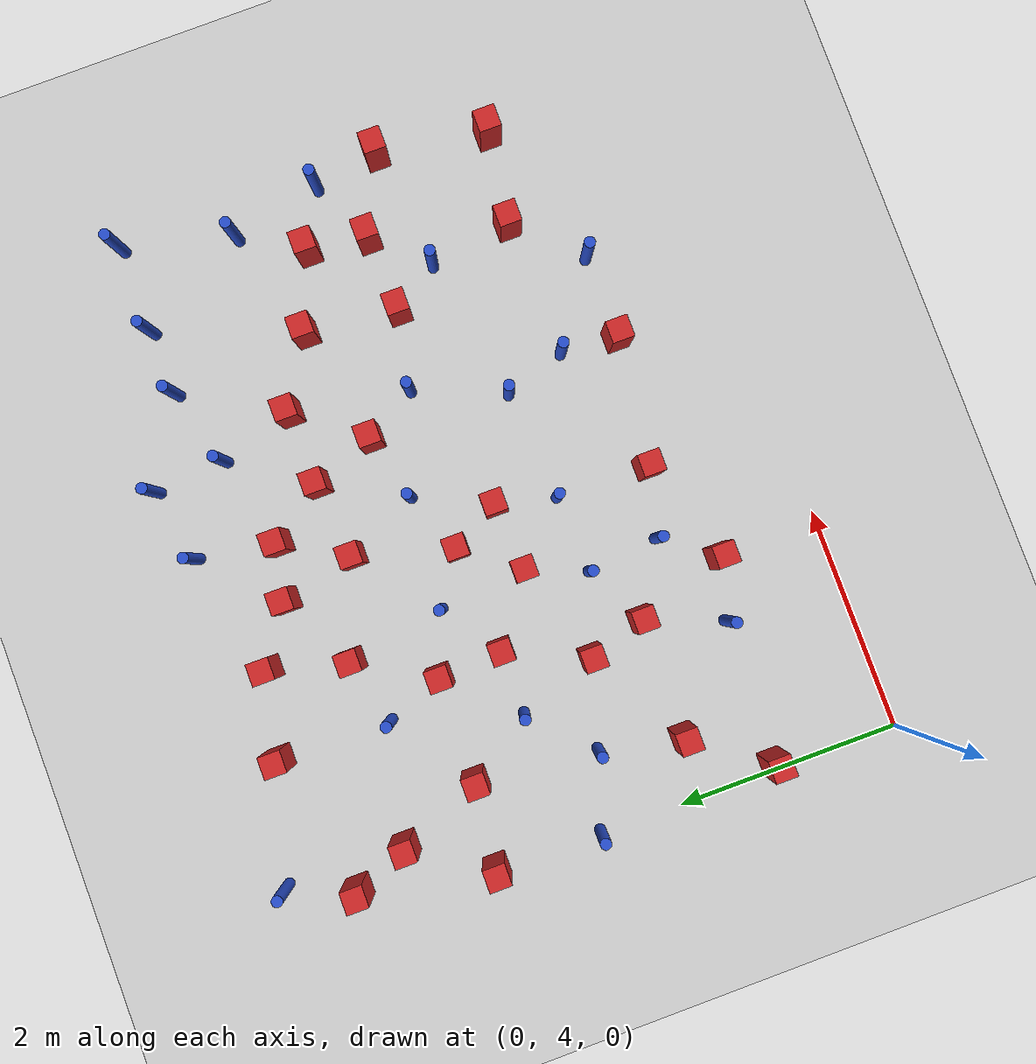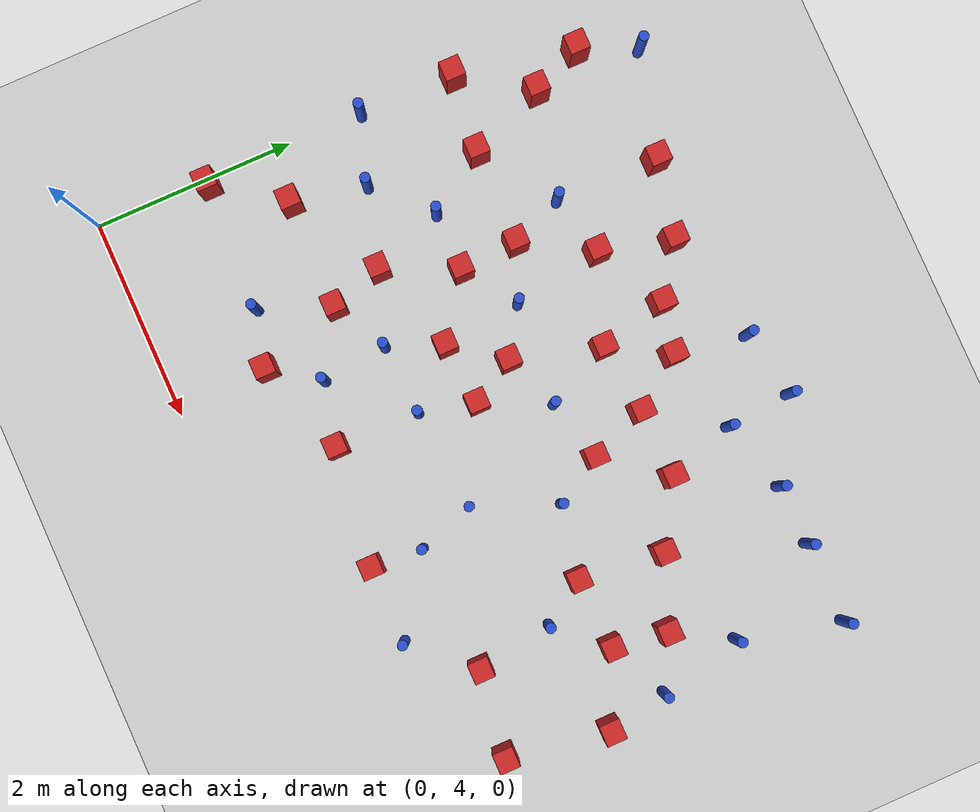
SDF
<sdf version="1.6">
 <world name="default">
  <model name="ground_plane">
   <static>1</static>
   <link name="link">
    <collision name="collision">
     <geometry><plane><normal>0 0 1</normal><size>100 100</size></plane></geometry>
     <surface><friction><ode><mu>100</mu><mu2>50</mu2></ode></friction></surface>
    </collision>
    <visual name="visual">
     <cast_shadows>0</cast_shadows>
     <geometry><plane><normal>0 0 1</normal><size>100 100</size></plane></geometry>
     <material>
      <ambient>1.0 1.0 1.0 1.0</ambient>
      <diffuse>0.8 0.8 0.8 1.0</diffuse>
      <specular>0.01 0.01 0.01 1.000000</specular>
     </material>
    </visual>
   </link>
  </model>
  <model name="square_post_obstacle1">
   <static>true</static>
   <pose>1.93483084903 4.93488205494 1.91545236811e-07 -7.35059704564e-06 1.12565212e-07 2.39332434364e-05</pose>
   <link name="link">
    <pose>0 0 0.25 0 -0 0</pose>
    <inertial>
     <mass>100</mass>
     <inertia>
      <ixx>0.166667</ixx>
      <ixy>0</ixy>
      <ixz>0</ixz>
      <iyy>0.166667</iyy>
      <iyz>0</iyz>
      <izz>0.166667</izz>
     </inertia>
    </inertial>
    <collision name="collision"><geometry><box><size>.2 .2 .5</size></box></geometry></collision>
    <visual name="visual">
     <geometry><box><size>.2 .2 .5</size></box></geometry>
     <material>
      <script><name>Gazebo/Red</name><uri>file://media/materials/scripts/gazebo.material</uri></script>
     </material>
    </visual>
   </link>
  </model>
  <model name="square_post_obstacle2">
   <static>true</static>
   <pose>0.0900470342076 5.1326568709 1.91545236811e-07 -7.35059704564e-06 1.12565212e-07 2.39332434364e-05</pose>
   <link name="link">
    <pose>0 0 0.25 0 -0 0</pose>
    <inertial>
     <mass>100</mass>
     <inertia>
      <ixx>0.166667</ixx>
      <ixy>0</ixy>
      <ixz>0</ixz>
      <iyy>0.166667</iyy>
      <iyz>0</iyz>
      <izz>0.166667</izz>
     </inertia>
    </inertial>
    <collision name="collision"><geometry><box><size>.2 .2 .5</size></box></geometry></collision>
    <visual name="visual">
     <geometry><box><size>.2 .2 .5</size></box></geometry>
     <material>
      <script><name>Gazebo/Red</name><uri>file://media/materials/scripts/gazebo.material</uri></script>
     </material>
    </visual>
   </link>
  </model>
  <model name="square_post_obstacle11">
   <static>true</static>
   <pose>5.7341250689 7.40073843208 1.91545236811e-07 -7.35059704564e-06 1.12565212e-07 2.39332434364e-05</pose>
   <link name="link">
    <pose>0 0 0.25 0 -0 0</pose>
    <inertial>
     <mass>100</mass>
     <inertia>
      <ixx>0.166667</ixx>
      <ixy>0</ixy>
      <ixz>0</ixz>
      <iyy>0.166667</iyy>
      <iyz>0</iyz>
      <izz>0.166667</izz>
     </inertia>
    </inertial>
    <collision name="collision"><geometry><box><size>.2 .2 .5</size></box></geometry></collision>
    <visual name="visual">
     <geometry><box><size>.2 .2 .5</size></box></geometry>
     <material>
      <script><name>Gazebo/Red</name><uri>file://media/materials/scripts/gazebo.material</uri></script>
     </material>
    </visual>
   </link>
  </model>
  <model name="square_post_obstacle12">
   <static>true</static>
   <pose>1.49668909736 6.29393075869 1.91545236811e-07 -7.35059704564e-06 1.12565212e-07 2.39332434364e-05</pose>
   <link name="link">
    <pose>0 0 0.25 0 -0 0</pose>
    <inertial>
     <mass>100</mass>
     <inertia>
      <ixx>0.166667</ixx>
      <ixy>0</ixy>
      <ixz>0</ixz>
      <iyy>0.166667</iyy>
      <iyz>0</iyz>
      <izz>0.166667</izz>
     </inertia>
    </inertial>
    <collision name="collision"><geometry><box><size>.2 .2 .5</size></box></geometry></collision>
    <visual name="visual">
     <geometry><box><size>.2 .2 .5</size></box></geometry>
     <material>
      <script><name>Gazebo/Red</name><uri>file://media/materials/scripts/gazebo.material</uri></script>
     </material>
    </visual>
   </link>
  </model>
  <model name="pole_obstacle15">
   <static>true</static>
   <pose>2.26561595511 5.39655624424 7.38925637345e-09 -8.47170692798e-08 1.24976765033e-08 -1.74513093019e-07</pose>
   <link name="link">
    <pose>0 0 0.3 0 -0 0</pose>
    <inertial>
     <mass>1</mass>
     <inertia><ixx>0.145833</ixx><ixy>0</ixy><ixz>0</ixz><iyy>0.145833</iyy><iyz>0</iyz><izz>0.125</izz></inertia>
    </inertial>
    <collision name="collision">
     <geometry><cylinder><radius>0.05</radius><length>.6</length></cylinder></geometry>
    </collision>
    <visual name="visual">
     <geometry><cylinder><radius>0.05</radius><length>.6</length></cylinder></geometry>
     <material>
      <script><name>Gazebo/Blue</name><uri>file://media/materials/scripts/gazebo.material</uri></script>
     </material>
    </visual>
   </link>
  </model>
  <model name="pole_obstacle17">
   <static>true</static>
   <pose>1.57913167435 8.12434509851 7.38925637345e-09 -8.47170692798e-08 1.24976764881e-08 -1.74513093027e-07</pose>
   <link name="link">
    <pose>0 0 0.3 0 -0 0</pose>
    <inertial>
     <mass>1</mass>
     <inertia><ixx>0.145833</ixx><ixy>0</ixy><ixz>0</ixz><iyy>0.145833</iyy><iyz>0</iyz><izz>0.125</izz></inertia>
    </inertial>
    <collision name="collision">
     <geometry><cylinder><radius>0.05</radius><length>.6</length></cylinder></geometry>
    </collision>
    <visual name="visual">
     <geometry><cylinder><radius>0.05</radius><length>.6</length></cylinder></geometry>
     <material>
      <script><name>Gazebo/Blue</name><uri>file://media/materials/scripts/gazebo.material</uri></script>
     </material>
    </visual>
   </link>
  </model>
  <model name="square_post_obstacle24">
   <static>true</static>
   <pose>1.7915526482 7.59212266439 1.91545236811e-07 -7.35059704564e-06 1.12565212e-07 2.39332434364e-05</pose>
   <link name="link">
    <pose>0 0 0.25 0 -0 0</pose>
    <inertial>
     <mass>100</mass>
     <inertia>
      <ixx>0.166667</ixx>
      <ixy>0</ixy>
      <ixz>0</ixz>
      <iyy>0.166667</iyy>
      <iyz>0</iyz>
      <izz>0.166667</izz>
     </inertia>
    </inertial>
    <collision name="collision"><geometry><box><size>.2 .2 .5</size></box></geometry></collision>
    <visual name="visual">
     <geometry><box><size>.2 .2 .5</size></box></geometry>
     <material>
      <script><name>Gazebo/Red</name><uri>file://media/materials/scripts/gazebo.material</uri></script>
     </material>
    </visual>
   </link>
  </model>
  <model name="square_post_obstacle26">
   <static>true</static>
   <pose>6.18220737324 5.5353171193 1.91545236811e-07 -7.35059704564e-06 1.12565212e-07 2.39332434364e-05</pose>
   <link name="link">
    <pose>0 0 0.25 0 -0 0</pose>
    <inertial>
     <mass>100</mass>
     <inertia>
      <ixx>0.166667</ixx>
      <ixy>0</ixy>
      <ixz>0</ixz>
      <iyy>0.166667</iyy>
      <iyz>0</iyz>
      <izz>0.166667</izz>
     </inertia>
    </inertial>
    <collision name="collision"><geometry><box><size>.2 .2 .5</size></box></geometry></collision>
    <visual name="visual">
     <geometry><box><size>.2 .2 .5</size></box></geometry>
     <material>
      <script><name>Gazebo/Red</name><uri>file://media/materials/scripts/gazebo.material</uri></script>
     </material>
    </visual>
   </link>
  </model>
  <model name="pole_obstacle18">
   <static>true</static>
   <pose>5.52561991202 8.94455557419 7.38925637345e-09 -8.471706928e-08 1.24976765081e-08 -1.74513093015e-07</pose>
   <link name="link">
    <pose>0 0 0.3 0 -0 0</pose>
    <inertial>
     <mass>1</mass>
     <inertia><ixx>0.145833</ixx><ixy>0</ixy><ixz>0</ixz><iyy>0.145833</iyy><iyz>0</iyz><izz>0.125</izz></inertia>
    </inertial>
    <collision name="collision">
     <geometry><cylinder><radius>0.05</radius><length>.6</length></cylinder></geometry>
    </collision>
    <visual name="visual">
     <geometry><cylinder><radius>0.05</radius><length>.6</length></cylinder></geometry>
     <material>
      <script><name>Gazebo/Blue</name><uri>file://media/materials/scripts/gazebo.material</uri></script>
     </material>
    </visual>
   </link>
  </model>
  <model name="pole_obstacle35">
   <static>true</static>
   <pose>0.552713053954 9.45289014186 7.38925637345e-09 -8.47170692797e-08 1.249767648e-08 -1.74513093032e-07</pose>
   <link name="link">
    <pose>0 0 0.3 0 -0 0</pose>
    <inertial>
     <mass>1</mass>
     <inertia><ixx>0.145833</ixx><ixy>0</ixy><ixz>0</ixz><iyy>0.145833</iyy><iyz>0</iyz><izz>0.125</izz></inertia>
    </inertial>
    <collision name="collision">
     <geometry><cylinder><radius>0.05</radius><length>.6</length></cylinder></geometry>
    </collision>
    <visual name="visual">
     <geometry><cylinder><radius>0.05</radius><length>.6</length></cylinder></geometry>
     <material>
      <script><name>Gazebo/Blue</name><uri>file://media/materials/scripts/gazebo.material</uri></script>
     </material>
    </visual>
   </link>
  </model>
  <model name="square_post_obstacle37">
   <static>true</static>
   <pose>3.74082497017 8.02329801374 1.91545236811e-07 -7.35059704564e-06 1.12565212e-07 2.39332434364e-05</pose>
   <link name="link">
    <pose>0 0 0.25 0 -0 0</pose>
    <inertial>
     <mass>100</mass>
     <inertia>
      <ixx>0.166667</ixx>
      <ixy>0</ixy>
      <ixz>0</ixz>
      <iyy>0.166667</iyy>
      <iyz>0</iyz>
      <izz>0.166667</izz>
     </inertia>
    </inertial>
    <collision name="collision"><geometry><box><size>.2 .2 .5</size></box></geometry></collision>
    <visual name="visual">
     <geometry><box><size>.2 .2 .5</size></box></geometry>
     <material>
      <script><name>Gazebo/Red</name><uri>file://media/materials/scripts/gazebo.material</uri></script>
     </material>
    </visual>
   </link>
  </model>
  <model name="pole_obstacle45">
   <static>true</static>
   <pose>0.048771176218 6.74554463984 7.38925637345e-09 -8.471706928e-08 1.2497676505e-08 -1.74513093019e-07</pose>
   <link name="link">
    <pose>0 0 0.3 0 -0 0</pose>
    <inertial>
     <mass>1</mass>
     <inertia><ixx>0.145833</ixx><ixy>0</ixy><ixz>0</ixz><iyy>0.145833</iyy><iyz>0</iyz><izz>0.125</izz></inertia>
    </inertial>
    <collision name="collision">
     <geometry><cylinder><radius>0.05</radius><length>.6</length></cylinder></geometry>
    </collision>
    <visual name="visual">
     <geometry><cylinder><radius>0.05</radius><length>.6</length></cylinder></geometry>
     <material>
      <script><name>Gazebo/Blue</name><uri>file://media/materials/scripts/gazebo.material</uri></script>
     </material>
    </visual>
   </link>
  </model>
  <model name="pole_obstacle46">
   <static>true</static>
   <pose>4.82752817177 5.09648752353 7.38925637345e-09 -8.47170692796e-08 1.24976764786e-08 -1.74513093032e-07</pose>
   <link name="link">
    <pose>0 0 0.3 0 -0 0</pose>
    <inertial>
     <mass>1</mass>
     <inertia><ixx>0.145833</ixx><ixy>0</ixy><ixz>0</ixz><iyy>0.145833</iyy><iyz>0</iyz><izz>0.125</izz></inertia>
    </inertial>
    <collision name="collision">
     <geometry><cylinder><radius>0.05</radius><length>.6</length></cylinder></geometry>
    </collision>
    <visual name="visual">
     <geometry><cylinder><radius>0.05</radius><length>.6</length></cylinder></geometry>
     <material>
      <script><name>Gazebo/Blue</name><uri>file://media/materials/scripts/gazebo.material</uri></script>
     </material>
    </visual>
   </link>
  </model>
  <model name="pole_obstacle47">
   <static>true</static>
   <pose>4.24195158995 6.97730037552 7.38925637345e-09 -8.47170692796e-08 1.24976764786e-08 -1.74513093032e-07</pose>
   <link name="link">
    <pose>0 0 0.3 0 -0 0</pose>
    <inertial>
     <mass>1</mass>
     <inertia><ixx>0.145833</ixx><ixy>0</ixy><ixz>0</ixz><iyy>0.145833</iyy><iyz>0</iyz><izz>0.125</izz></inertia>
    </inertial>
    <collision name="collision">
     <geometry><cylinder><radius>0.05</radius><length>.6</length></cylinder></geometry>
    </collision>
    <visual name="visual">
     <geometry><cylinder><radius>0.05</radius><length>.6</length></cylinder></geometry>
     <material>
      <script><name>Gazebo/Blue</name><uri>file://media/materials/scripts/gazebo.material</uri></script>
     </material>
    </visual>
   </link>
  </model>
  <model name="square_post_obstacle49">
   <static>true</static>
   <pose>2.8762957895 8.62678756831 1.91545236811e-07 -7.35059704564e-06 1.12565212e-07 2.39332434364e-05</pose>
   <link name="link">
    <pose>0 0 0.25 0 -0 0</pose>
    <inertial>
     <mass>100</mass>
     <inertia>
      <ixx>0.166667</ixx>
      <ixy>0</ixy>
      <ixz>0</ixz>
      <iyy>0.166667</iyy>
      <iyz>0</iyz>
      <izz>0.166667</izz>
     </inertia>
    </inertial>
    <collision name="collision"><geometry><box><size>.2 .2 .5</size></box></geometry></collision>
    <visual name="visual">
     <geometry><box><size>.2 .2 .5</size></box></geometry>
     <material>
      <script><name>Gazebo/Red</name><uri>file://media/materials/scripts/gazebo.material</uri></script>
     </material>
    </visual>
   </link>
  </model>
  <model name="square_post_obstacle50">
   <static>true</static>
   <pose>2.88530057109 5.25202806149 1.91545236811e-07 -7.35059704564e-06 1.12565212e-07 2.39332434364e-05</pose>
   <link name="link">
    <pose>0 0 0.25 0 -0 0</pose>
    <inertial>
     <mass>100</mass>
     <inertia>
      <ixx>0.166667</ixx>
      <ixy>0</ixy>
      <ixz>0</ixz>
      <iyy>0.166667</iyy>
      <iyz>0</iyz>
      <izz>0.166667</izz>
     </inertia>
    </inertial>
    <collision name="collision"><geometry><box><size>.2 .2 .5</size></box></geometry></collision>
    <visual name="visual">
     <geometry><box><size>.2 .2 .5</size></box></geometry>
     <material>
      <script><name>Gazebo/Red</name><uri>file://media/materials/scripts/gazebo.material</uri></script>
     </material>
    </visual>
   </link>
  </model>
  <model name="square_post_obstacle52">
   <static>true</static>
   <pose>5.33941183156 5.65777651796 1.91545236811e-07 -7.35059704564e-06 1.12565212e-07 2.39332434364e-05</pose>
   <link name="link">
    <pose>0 0 0.25 0 -0 0</pose>
    <inertial>
     <mass>100</mass>
     <inertia>
      <ixx>0.166667</ixx>
      <ixy>0</ixy>
      <ixz>0</ixz>
      <iyy>0.166667</iyy>
      <iyz>0</iyz>
      <izz>0.166667</izz>
     </inertia>
    </inertial>
    <collision name="collision"><geometry><box><size>.2 .2 .5</size></box></geometry></collision>
    <visual name="visual">
     <geometry><box><size>.2 .2 .5</size></box></geometry>
     <material>
      <script><name>Gazebo/Red</name><uri>file://media/materials/scripts/gazebo.material</uri></script>
     </material>
    </visual>
   </link>
  </model>
  <model name="square_post_obstacle54">
   <static>true</static>
   <pose>4.94875809297 6.83054546641 1.91545236811e-07 -7.35059704564e-06 1.12565212e-07 2.39332434364e-05</pose>
   <link name="link">
    <pose>0 0 0.25 0 -0 0</pose>
    <inertial>
     <mass>100</mass>
     <inertia>
      <ixx>0.166667</ixx>
      <ixy>0</ixy>
      <ixz>0</ixz>
      <iyy>0.166667</iyy>
      <iyz>0</iyz>
      <izz>0.166667</izz>
     </inertia>
    </inertial>
    <collision name="collision"><geometry><box><size>.2 .2 .5</size></box></geometry></collision>
    <visual name="visual">
     <geometry><box><size>.2 .2 .5</size></box></geometry>
     <material>
      <script><name>Gazebo/Red</name><uri>file://media/materials/scripts/gazebo.material</uri></script>
     </material>
    </visual>
   </link>
  </model>
  <model name="square_post_obstacle56">
   <static>true</static>
   <pose>1.6556246484 5.7717464874 1.91545236811e-07 -7.35059704564e-06 1.12565212e-07 2.39332434364e-05</pose>
   <link name="link">
    <pose>0 0 0.25 0 -0 0</pose>
    <inertial>
     <mass>100</mass>
     <inertia>
      <ixx>0.166667</ixx>
      <ixy>0</ixy>
      <ixz>0</ixz>
      <iyy>0.166667</iyy>
      <iyz>0</iyz>
      <izz>0.166667</izz>
     </inertia>
    </inertial>
    <collision name="collision"><geometry><box><size>.2 .2 .5</size></box></geometry></collision>
    <visual name="visual">
     <geometry><box><size>.2 .2 .5</size></box></geometry>
     <material>
      <script><name>Gazebo/Red</name><uri>file://media/materials/scripts/gazebo.material</uri></script>
     </material>
    </visual>
   </link>
  </model>
  <model name="square_post_obstacle57">
   <static>true</static>
   <pose>1.60607143369 9.14301476024 1.91545236811e-07 -7.35059704564e-06 1.12565212e-07 2.39332434364e-05</pose>
   <link name="link">
    <pose>0 0 0.25 0 -0 0</pose>
    <inertial>
     <mass>100</mass>
     <inertia>
      <ixx>0.166667</ixx>
      <ixy>0</ixy>
      <ixz>0</ixz>
      <iyy>0.166667</iyy>
      <iyz>0</iyz>
      <izz>0.166667</izz>
     </inertia>
    </inertial>
    <collision name="collision"><geometry><box><size>.2 .2 .5</size></box></geometry></collision>
    <visual name="visual">
     <geometry><box><size>.2 .2 .5</size></box></geometry>
     <material>
      <script><name>Gazebo/Red</name><uri>file://media/materials/scripts/gazebo.material</uri></script>
     </material>
    </visual>
   </link>
  </model>
  <model name="pole_obstacle61">
   <static>true</static>
   <pose>3.35120120921 7.29725803421 7.38925637345e-09 -8.47170692798e-08 1.24976765033e-08 -1.74513093019e-07</pose>
   <link name="link">
    <pose>0 0 0.3 0 -0 0</pose>
    <inertial>
     <mass>1</mass>
     <inertia><ixx>0.145833</ixx><ixy>0</ixy><ixz>0</ixz><iyy>0.145833</iyy><iyz>0</iyz><izz>0.125</izz></inertia>
    </inertial>
    <collision name="collision">
     <geometry><cylinder><radius>0.05</radius><length>.6</length></cylinder></geometry>
    </collision>
    <visual name="visual">
     <geometry><cylinder><radius>0.05</radius><length>.6</length></cylinder></geometry>
     <material>
      <script><name>Gazebo/Blue</name><uri>file://media/materials/scripts/gazebo.material</uri></script>
     </material>
    </visual>
   </link>
  </model>
  <model name="pole_obstacle64">
   <static>true</static>
   <pose>5.23588643116 6.40237930272 7.38925637345e-09 -8.47170692796e-08 1.24976764786e-08 -1.74513093032e-07</pose>
   <link name="link">
    <pose>0 0 0.3 0 -0 0</pose>
    <inertial>
     <mass>1</mass>
     <inertia><ixx>0.145833</ixx><ixy>0</ixy><ixz>0</ixz><iyy>0.145833</iyy><iyz>0</iyz><izz>0.125</izz></inertia>
    </inertial>
    <collision name="collision">
     <geometry><cylinder><radius>0.05</radius><length>.6</length></cylinder></geometry>
    </collision>
    <visual name="visual">
     <geometry><cylinder><radius>0.05</radius><length>.6</length></cylinder></geometry>
     <material>
      <script><name>Gazebo/Blue</name><uri>file://media/materials/scripts/gazebo.material</uri></script>
     </material>
    </visual>
   </link>
  </model>
  <model name="square_post_obstacle72">
   <static>true</static>
   <pose>2.7919688193 7.0725195455 1.91545236811e-07 -7.35059704564e-06 1.12565212e-07 2.39332434364e-05</pose>
   <link name="link">
    <pose>0 0 0.25 0 -0 0</pose>
    <inertial>
     <mass>100</mass>
     <inertia>
      <ixx>0.166667</ixx>
      <ixy>0</ixy>
      <ixz>0</ixz>
      <iyy>0.166667</iyy>
      <iyz>0</iyz>
      <izz>0.166667</izz>
     </inertia>
    </inertial>
    <collision name="collision"><geometry><box><size>.2 .2 .5</size></box></geometry></collision>
    <visual name="visual">
     <geometry><box><size>.2 .2 .5</size></box></geometry>
     <material>
      <script><name>Gazebo/Red</name><uri>file://media/materials/scripts/gazebo.material</uri></script>
     </material>
    </visual>
   </link>
  </model>
  <model name="square_post_obstacle76">
   <static>true</static>
   <pose>0.0769509774829 7.69463011985 1.91545236811e-07 -7.35059704564e-06 1.12565212e-07 2.39332434364e-05</pose>
   <link name="link">
    <pose>0 0 0.25 0 -0 0</pose>
    <inertial>
     <mass>100</mass>
     <inertia>
      <ixx>0.166667</ixx>
      <ixy>0</ixy>
      <ixz>0</ixz>
      <iyy>0.166667</iyy>
      <iyz>0</iyz>
      <izz>0.166667</izz>
     </inertia>
    </inertial>
    <collision name="collision"><geometry><box><size>.2 .2 .5</size></box></geometry></collision>
    <visual name="visual">
     <geometry><box><size>.2 .2 .5</size></box></geometry>
     <material>
      <script><name>Gazebo/Red</name><uri>file://media/materials/scripts/gazebo.material</uri></script>
     </material>
    </visual>
   </link>
  </model>
  <model name="square_post_obstacle78">
   <static>true</static>
   <pose>2.18633530648 8.26488761641 1.91545236811e-07 -7.35059704564e-06 1.12565212e-07 2.39332434364e-05</pose>
   <link name="link">
    <pose>0 0 0.25 0 -0 0</pose>
    <inertial>
     <mass>100</mass>
     <inertia>
      <ixx>0.166667</ixx>
      <ixy>0</ixy>
      <ixz>0</ixz>
      <iyy>0.166667</iyy>
      <iyz>0</iyz>
      <izz>0.166667</izz>
     </inertia>
    </inertial>
    <collision name="collision"><geometry><box><size>.2 .2 .5</size></box></geometry></collision>
    <visual name="visual">
     <geometry><box><size>.2 .2 .5</size></box></geometry>
     <material>
      <script><name>Gazebo/Red</name><uri>file://media/materials/scripts/gazebo.material</uri></script>
     </material>
    </visual>
   </link>
  </model>
  <model name="pole_obstacle86">
   <static>true</static>
   <pose>1.3770401201 5.07652156089 7.38925637345e-09 -8.47170692799e-08 1.24976765033e-08 -1.74513093018e-07</pose>
   <link name="link">
    <pose>0 0 0.3 0 -0 0</pose>
    <inertial>
     <mass>1</mass>
     <inertia><ixx>0.145833</ixx><ixy>0</ixy><ixz>0</ixz><iyy>0.145833</iyy><iyz>0</iyz><izz>0.125</izz></inertia>
    </inertial>
    <collision name="collision">
     <geometry><cylinder><radius>0.05</radius><length>.6</length></cylinder></geometry>
    </collision>
    <visual name="visual">
     <geometry><cylinder><radius>0.05</radius><length>.6</length></cylinder></geometry>
     <material>
      <script><name>Gazebo/Blue</name><uri>file://media/materials/scripts/gazebo.material</uri></script>
     </material>
    </visual>
   </link>
  </model>
  <model name="pole_obstacle91">
   <static>true</static>
   <pose>1.23452874094 7.01668085963 7.38925637345e-09 -8.47170692799e-08 1.24976765033e-08 -1.74513093018e-07</pose>
   <link name="link">
    <pose>0 0 0.3 0 -0 0</pose>
    <inertial>
     <mass>1</mass>
     <inertia><ixx>0.145833</ixx><ixy>0</ixy><ixz>0</ixz><iyy>0.145833</iyy><iyz>0</iyz><izz>0.125</izz></inertia>
    </inertial>
    <collision name="collision">
     <geometry><cylinder><radius>0.05</radius><length>.6</length></cylinder></geometry>
    </collision>
    <visual name="visual">
     <geometry><cylinder><radius>0.05</radius><length>.6</length></cylinder></geometry>
     <material>
      <script><name>Gazebo/Blue</name><uri>file://media/materials/scripts/gazebo.material</uri></script>
     </material>
    </visual>
   </link>
  </model>
  <model name="square_post_obstacle83">
   <static>true</static>
   <pose>3.04176350669 7.94684813386 1.91545236811e-07 -7.35059704564e-06 1.12565212e-07 2.39332434364e-05</pose>
   <link name="link">
    <pose>0 0 0.25 0 -0 0</pose>
    <inertial>
     <mass>100</mass>
     <inertia>
      <ixx>0.166667</ixx>
      <ixy>0</ixy>
      <ixz>0</ixz>
      <iyy>0.166667</iyy>
      <iyz>0</iyz>
      <izz>0.166667</izz>
     </inertia>
    </inertial>
    <collision name="collision"><geometry><box><size>.2 .2 .5</size></box></geometry></collision>
    <visual name="visual">
     <geometry><box><size>.2 .2 .5</size></box></geometry>
     <material>
      <script><name>Gazebo/Red</name><uri>file://media/materials/scripts/gazebo.material</uri></script>
     </material>
    </visual>
   </link>
  </model>
  <model name="pole_obstacle109">
   <static>true</static>
   <pose>4.21707057051 8.7229137576 7.38925637345e-09 -8.471706928e-08 1.24976765081e-08 -1.74513093015e-07</pose>
   <link name="link">
    <pose>0 0 0.3 0 -0 0</pose>
    <inertial>
     <mass>1</mass>
     <inertia><ixx>0.145833</ixx><ixy>0</ixy><ixz>0</ixz><iyy>0.145833</iyy><iyz>0</iyz><izz>0.125</izz></inertia>
    </inertial>
    <collision name="collision">
     <geometry><cylinder><radius>0.05</radius><length>.6</length></cylinder></geometry>
    </collision>
    <visual name="visual">
     <geometry><cylinder><radius>0.05</radius><length>.6</length></cylinder></geometry>
     <material>
      <script><name>Gazebo/Blue</name><uri>file://media/materials/scripts/gazebo.material</uri></script>
     </material>
    </visual>
   </link>
  </model>
  <model name="pole_obstacle114">
   <static>true</static>
   <pose>0.71987217576 6.52132310265 7.38925637345e-09 -8.471706928e-08 1.24976765086e-08 -1.74513093015e-07</pose>
   <link name="link">
    <pose>0 0 0.3 0 -0 0</pose>
    <inertial>
     <mass>1</mass>
     <inertia><ixx>0.145833</ixx><ixy>0</ixy><ixz>0</ixz><iyy>0.145833</iyy><iyz>0</iyz><izz>0.125</izz></inertia>
    </inertial>
    <collision name="collision">
     <geometry><cylinder><radius>0.05</radius><length>.6</length></cylinder></geometry>
    </collision>
    <visual name="visual">
     <geometry><cylinder><radius>0.05</radius><length>.6</length></cylinder></geometry>
     <material>
      <script><name>Gazebo/Blue</name><uri>file://media/materials/scripts/gazebo.material</uri></script>
     </material>
    </visual>
   </link>
  </model>
  <model name="pole_obstacle122">
   <static>true</static>
   <pose>4.16605712354 9.37466607705 7.38925637345e-09 -8.471706928e-08 1.24976765081e-08 -1.74513093015e-07</pose>
   <link name="link">
    <pose>0 0 0.3 0 -0 0</pose>
    <inertial>
     <mass>1</mass>
     <inertia><ixx>0.145833</ixx><ixy>0</ixy><ixz>0</ixz><iyy>0.145833</iyy><iyz>0</iyz><izz>0.125</izz></inertia>
    </inertial>
    <collision name="collision">
     <geometry><cylinder><radius>0.05</radius><length>.6</length></cylinder></geometry>
    </collision>
    <visual name="visual">
     <geometry><cylinder><radius>0.05</radius><length>.6</length></cylinder></geometry>
     <material>
      <script><name>Gazebo/Blue</name><uri>file://media/materials/scripts/gazebo.material</uri></script>
     </material>
    </visual>
   </link>
  </model>
  <model name="pole_obstacle127">
   <static>true</static>
   <pose>6.06803295971 7.95521656115 7.38925637345e-09 -8.47170692799e-08 1.24976765036e-08 -1.74513093018e-07</pose>
   <link name="link">
    <pose>0 0 0.3 0 -0 0</pose>
    <inertial>
     <mass>1</mass>
     <inertia><ixx>0.145833</ixx><ixy>0</ixy><ixz>0</ixz><iyy>0.145833</iyy><iyz>0</iyz><izz>0.125</izz></inertia>
    </inertial>
    <collision name="collision">
     <geometry><cylinder><radius>0.05</radius><length>.6</length></cylinder></geometry>
    </collision>
    <visual name="visual">
     <geometry><cylinder><radius>0.05</radius><length>.6</length></cylinder></geometry>
     <material>
      <script><name>Gazebo/Blue</name><uri>file://media/materials/scripts/gazebo.material</uri></script>
     </material>
    </visual>
   </link>
  </model>
  <model name="square_post_obstacle118">
   <static>true</static>
   <pose>4.42082672079 8.04290227229 1.91545236811e-07 -7.35059704564e-06 1.12565212e-07 2.39332434364e-05</pose>
   <link name="link">
    <pose>0 0 0.25 0 -0 0</pose>
    <inertial>
     <mass>100</mass>
     <inertia>
      <ixx>0.166667</ixx>
      <ixy>0</ixy>
      <ixz>0</ixz>
      <iyy>0.166667</iyy>
      <iyz>0</iyz>
      <izz>0.166667</izz>
     </inertia>
    </inertial>
    <collision name="collision"><geometry><box><size>.2 .2 .5</size></box></geometry></collision>
    <visual name="visual">
     <geometry><box><size>.2 .2 .5</size></box></geometry>
     <material>
      <script><name>Gazebo/Red</name><uri>file://media/materials/scripts/gazebo.material</uri></script>
     </material>
    </visual>
   </link>
  </model>
  <model name="square_post_obstacle119">
   <static>true</static>
   <pose>2.4171259221 6.58467654341 1.91545236811e-07 -7.35059704564e-06 1.12565212e-07 2.39332434364e-05</pose>
   <link name="link">
    <pose>0 0 0.25 0 -0 0</pose>
    <inertial>
     <mass>100</mass>
     <inertia>
      <ixx>0.166667</ixx>
      <ixy>0</ixy>
      <ixz>0</ixz>
      <iyy>0.166667</iyy>
      <iyz>0</iyz>
      <izz>0.166667</izz>
     </inertia>
    </inertial>
    <collision name="collision"><geometry><box><size>.2 .2 .5</size></box></geometry></collision>
    <visual name="visual">
     <geometry><box><size>.2 .2 .5</size></box></geometry>
     <material>
      <script><name>Gazebo/Red</name><uri>file://media/materials/scripts/gazebo.material</uri></script>
     </material>
    </visual>
   </link>
  </model>
  <model name="square_post_obstacle130">
   <static>true</static>
   <pose>6.34932521352 6.53726927614 1.91545236811e-07 -7.35059704564e-06 1.12565212e-07 2.39332434364e-05</pose>
   <link name="link">
    <pose>0 0 0.25 0 -0 0</pose>
    <inertial>
     <mass>100</mass>
     <inertia>
      <ixx>0.166667</ixx>
      <ixy>0</ixy>
      <ixz>0</ixz>
      <iyy>0.166667</iyy>
      <iyz>0</iyz>
      <izz>0.166667</izz>
     </inertia>
    </inertial>
    <collision name="collision"><geometry><box><size>.2 .2 .5</size></box></geometry></collision>
    <visual name="visual">
     <geometry><box><size>.2 .2 .5</size></box></geometry>
     <material>
      <script><name>Gazebo/Red</name><uri>file://media/materials/scripts/gazebo.material</uri></script>
     </material>
    </visual>
   </link>
  </model>
  <model name="pole_obstacle152">
   <static>true</static>
   <pose>2.33669375619 7.37646512733 7.38925637345e-09 -8.47170692798e-08 1.24976765033e-08 -1.74513093019e-07</pose>
   <link name="link">
    <pose>0 0 0.3 0 -0 0</pose>
    <inertial>
     <mass>1</mass>
     <inertia><ixx>0.145833</ixx><ixy>0</ixy><ixz>0</ixz><iyy>0.145833</iyy><iyz>0</iyz><izz>0.125</izz></inertia>
    </inertial>
    <collision name="collision">
     <geometry><cylinder><radius>0.05</radius><length>.6</length></cylinder></geometry>
    </collision>
    <visual name="visual">
     <geometry><cylinder><radius>0.05</radius><length>.6</length></cylinder></geometry>
     <material>
      <script><name>Gazebo/Blue</name><uri>file://media/materials/scripts/gazebo.material</uri></script>
     </material>
    </visual>
   </link>
  </model>
  <model name="pole_obstacle154">
   <static>true</static>
   <pose>2.19895275774 6.05016301366 7.38925637345e-09 -8.47170692798e-08 1.24976765033e-08 -1.74513093019e-07</pose>
   <link name="link">
    <pose>0 0 0.3 0 -0 0</pose>
    <inertial>
     <mass>1</mass>
     <inertia><ixx>0.145833</ixx><ixy>0</ixy><ixz>0</ixz><iyy>0.145833</iyy><iyz>0</iyz><izz>0.125</izz></inertia>
    </inertial>
    <collision name="collision">
     <geometry><cylinder><radius>0.05</radius><length>.6</length></cylinder></geometry>
    </collision>
    <visual name="visual">
     <geometry><cylinder><radius>0.05</radius><length>.6</length></cylinder></geometry>
     <material>
      <script><name>Gazebo/Blue</name><uri>file://media/materials/scripts/gazebo.material</uri></script>
     </material>
    </visual>
   </link>
  </model>
  <model name="square_post_obstacle148">
   <static>true</static>
   <pose>5.04371580126 7.66993532112 1.91545236811e-07 -7.35059704564e-06 1.12565212e-07 2.39332434364e-05</pose>
   <link name="link">
    <pose>0 0 0.25 0 -0 0</pose>
    <inertial>
     <mass>100</mass>
     <inertia>
      <ixx>0.166667</ixx>
      <ixy>0</ixy>
      <ixz>0</ixz>
      <iyy>0.166667</iyy>
      <iyz>0</iyz>
      <izz>0.166667</izz>
     </inertia>
    </inertial>
    <collision name="collision"><geometry><box><size>.2 .2 .5</size></box></geometry></collision>
    <visual name="visual">
     <geometry><box><size>.2 .2 .5</size></box></geometry>
     <material>
      <script><name>Gazebo/Red</name><uri>file://media/materials/scripts/gazebo.material</uri></script>
     </material>
    </visual>
   </link>
  </model>
  <model name="square_post_obstacle160">
   <static>true</static>
   <pose>0.532370722522 8.36823322119 1.91545236811e-07 -7.35059704564e-06 1.12565212e-07 2.39332434364e-05</pose>
   <link name="link">
    <pose>0 0 0.25 0 -0 0</pose>
    <inertial>
     <mass>100</mass>
     <inertia>
      <ixx>0.166667</ixx>
      <ixy>0</ixy>
      <ixz>0</ixz>
      <iyy>0.166667</iyy>
      <iyz>0</iyz>
      <izz>0.166667</izz>
     </inertia>
    </inertial>
    <collision name="collision"><geometry><box><size>.2 .2 .5</size></box></geometry></collision>
    <visual name="visual">
     <geometry><box><size>.2 .2 .5</size></box></geometry>
     <material>
      <script><name>Gazebo/Red</name><uri>file://media/materials/scripts/gazebo.material</uri></script>
     </material>
    </visual>
   </link>
  </model>
  <model name="pole_obstacle168">
   <static>true</static>
   <pose>3.49335075433 9.24321412157 7.38925637345e-09 -8.47170692793e-08 1.24976764408e-08 -1.74513093041e-07</pose>
   <link name="link">
    <pose>0 0 0.3 0 -0 0</pose>
    <inertial>
     <mass>1</mass>
     <inertia><ixx>0.145833</ixx><ixy>0</ixy><ixz>0</ixz><iyy>0.145833</iyy><iyz>0</iyz><izz>0.125</izz></inertia>
    </inertial>
    <collision name="collision">
     <geometry><cylinder><radius>0.05</radius><length>.6</length></cylinder></geometry>
    </collision>
    <visual name="visual">
     <geometry><cylinder><radius>0.05</radius><length>.6</length></cylinder></geometry>
     <material>
      <script><name>Gazebo/Blue</name><uri>file://media/materials/scripts/gazebo.material</uri></script>
     </material>
    </visual>
   </link>
  </model>
  <model name="pole_obstacle170">
   <static>true</static>
   <pose>3.91455337602 6.16888795033 7.38925637345e-09 -8.47170692798e-08 1.24976765033e-08 -1.74513093019e-07</pose>
   <link name="link">
    <pose>0 0 0.3 0 -0 0</pose>
    <inertial>
     <mass>1</mass>
     <inertia><ixx>0.145833</ixx><ixy>0</ixy><ixz>0</ixz><iyy>0.145833</iyy><iyz>0</iyz><izz>0.125</izz></inertia>
    </inertial>
    <collision name="collision">
     <geometry><cylinder><radius>0.05</radius><length>.6</length></cylinder></geometry>
    </collision>
    <visual name="visual">
     <geometry><cylinder><radius>0.05</radius><length>.6</length></cylinder></geometry>
     <material>
      <script><name>Gazebo/Blue</name><uri>file://media/materials/scripts/gazebo.material</uri></script>
     </material>
    </visual>
   </link>
  </model>
  <model name="pole_obstacle174">
   <static>true</static>
   <pose>4.09884709372 5.60888433805 7.38925637345e-09 -8.47170692796e-08 1.24976764786e-08 -1.74513093032e-07</pose>
   <link name="link">
    <pose>0 0 0.3 0 -0 0</pose>
    <inertial>
     <mass>1</mass>
     <inertia><ixx>0.145833</ixx><ixy>0</ixy><ixz>0</ixz><iyy>0.145833</iyy><iyz>0</iyz><izz>0.125</izz></inertia>
    </inertial>
    <collision name="collision">
     <geometry><cylinder><radius>0.05</radius><length>.6</length></cylinder></geometry>
    </collision>
    <visual name="visual">
     <geometry><cylinder><radius>0.05</radius><length>.6</length></cylinder></geometry>
     <material>
      <script><name>Gazebo/Blue</name><uri>file://media/materials/scripts/gazebo.material</uri></script>
     </material>
    </visual>
   </link>
  </model>
  <model name="square_post_obstacle167">
   <static>true</static>
   <pose>0.32116701066 8.87541290401 1.91545236811e-07 -7.35059704564e-06 1.12565212e-07 2.39332434364e-05</pose>
   <link name="link">
    <pose>0 0 0.25 0 -0 0</pose>
    <inertial>
     <mass>100</mass>
     <inertia>
      <ixx>0.166667</ixx>
      <ixy>0</ixy>
      <ixz>0</ixz>
      <iyy>0.166667</iyy>
      <iyz>0</iyz>
      <izz>0.166667</izz>
     </inertia>
    </inertial>
    <collision name="collision"><geometry><box><size>.2 .2 .5</size></box></geometry></collision>
    <visual name="visual">
     <geometry><box><size>.2 .2 .5</size></box></geometry>
     <material>
      <script><name>Gazebo/Red</name><uri>file://media/materials/scripts/gazebo.material</uri></script>
     </material>
    </visual>
   </link>
  </model>
  <model name="pole_obstacle182">
   <static>true</static>
   <pose>6.32558543039 8.9550640639 7.38925637345e-09 -8.471706928e-08 1.24976765081e-08 -1.74513093015e-07</pose>
   <link name="link">
    <pose>0 0 0.3 0 -0 0</pose>
    <inertial>
     <mass>1</mass>
     <inertia><ixx>0.145833</ixx><ixy>0</ixy><ixz>0</ixz><iyy>0.145833</iyy><iyz>0</iyz><izz>0.125</izz></inertia>
    </inertial>
    <collision name="collision">
     <geometry><cylinder><radius>0.05</radius><length>.6</length></cylinder></geometry>
    </collision>
    <visual name="visual">
     <geometry><cylinder><radius>0.05</radius><length>.6</length></cylinder></geometry>
     <material>
      <script><name>Gazebo/Blue</name><uri>file://media/materials/scripts/gazebo.material</uri></script>
     </material>
    </visual>
   </link>
  </model>
  <model name="square_post_obstacle177">
   <static>true</static>
   <pose>3.0401642442 6.63402090137 1.91545236811e-07 -7.35059704564e-06 1.12565212e-07 2.39332434364e-05</pose>
   <link name="link">
    <pose>0 0 0.25 0 -0 0</pose>
    <inertial>
     <mass>100</mass>
     <inertia>
      <ixx>0.166667</ixx>
      <ixy>0</ixy>
      <ixz>0</ixz>
      <iyy>0.166667</iyy>
      <iyz>0</iyz>
      <izz>0.166667</izz>
     </inertia>
    </inertial>
    <collision name="collision"><geometry><box><size>.2 .2 .5</size></box></geometry></collision>
    <visual name="visual">
     <geometry><box><size>.2 .2 .5</size></box></geometry>
     <material>
      <script><name>Gazebo/Red</name><uri>file://media/materials/scripts/gazebo.material</uri></script>
     </material>
    </visual>
   </link>
  </model>
  <model name="square_post_obstacle180">
   <static>true</static>
   <pose>0.568977006708 5.78506618617 1.91545236811e-07 -7.35059704564e-06 1.12565212e-07 2.39332434364e-05</pose>
   <link name="link">
    <pose>0 0 0.25 0 -0 0</pose>
    <inertial>
     <mass>100</mass>
     <inertia>
      <ixx>0.166667</ixx>
      <ixy>0</ixy>
      <ixz>0</ixz>
      <iyy>0.166667</iyy>
      <iyz>0</iyz>
      <izz>0.166667</izz>
     </inertia>
    </inertial>
    <collision name="collision"><geometry><box><size>.2 .2 .5</size></box></geometry></collision>
    <visual name="visual">
     <geometry><box><size>.2 .2 .5</size></box></geometry>
     <material>
      <script><name>Gazebo/Red</name><uri>file://media/materials/scripts/gazebo.material</uri></script>
     </material>
    </visual>
   </link>
  </model>
  <model name="square_post_obstacle184">
   <static>true</static>
   <pose>0.84327901638 7.60685324083 1.91545236811e-07 -7.35059704564e-06 1.12565212e-07 2.39332434364e-05</pose>
   <link name="link">
    <pose>0 0 0.25 0 -0 0</pose>
    <inertial>
     <mass>100</mass>
     <inertia>
      <ixx>0.166667</ixx>
      <ixy>0</ixy>
      <ixz>0</ixz>
      <iyy>0.166667</iyy>
      <iyz>0</iyz>
      <izz>0.166667</izz>
     </inertia>
    </inertial>
    <collision name="collision"><geometry><box><size>.2 .2 .5</size></box></geometry></collision>
    <visual name="visual">
     <geometry><box><size>.2 .2 .5</size></box></geometry>
     <material>
      <script><name>Gazebo/Red</name><uri>file://media/materials/scripts/gazebo.material</uri></script>
     </material>
    </visual>
   </link>
  </model>
  <model name="square_post_obstacle190">
   <static>true</static>
   <pose>2.37180947612 8.97667086708 1.91545236811e-07 -7.35059704564e-06 1.12565212e-07 2.39332434364e-05</pose>
   <link name="link">
    <pose>0 0 0.25 0 -0 0</pose>
    <inertial>
     <mass>100</mass>
     <inertia>
      <ixx>0.166667</ixx>
      <ixy>0</ixy>
      <ixz>0</ixz>
      <iyy>0.166667</iyy>
      <iyz>0</iyz>
      <izz>0.166667</izz>
     </inertia>
    </inertial>
    <collision name="collision"><geometry><box><size>.2 .2 .5</size></box></geometry></collision>
    <visual name="visual">
     <geometry><box><size>.2 .2 .5</size></box></geometry>
     <material>
      <script><name>Gazebo/Red</name><uri>file://media/materials/scripts/gazebo.material</uri></script>
     </material>
    </visual>
   </link>
  </model>
  <model name="square_post_obstacle200">
   <static>true</static>
   <pose>3.37211165641 8.51958481868 1.91545236811e-07 -7.35059704564e-06 1.12565212e-07 2.39332434364e-05</pose>
   <link name="link">
    <pose>0 0 0.25 0 -0 0</pose>
    <inertial>
     <mass>100</mass>
     <inertia>
      <ixx>0.166667</ixx>
      <ixy>0</ixy>
      <ixz>0</ixz>
      <iyy>0.166667</iyy>
      <iyz>0</iyz>
      <izz>0.166667</izz>
     </inertia>
    </inertial>
    <collision name="collision"><geometry><box><size>.2 .2 .5</size></box></geometry></collision>
    <visual name="visual">
     <geometry><box><size>.2 .2 .5</size></box></geometry>
     <material>
      <script><name>Gazebo/Red</name><uri>file://media/materials/scripts/gazebo.material</uri></script>
     </material>
    </visual>
   </link>
  </model>
  <model name="square_post_obstacle201">
   <static>true</static>
   <pose>3.95987372826 7.44776406428 1.91545236811e-07 -7.35059704564e-06 1.12565212e-07 2.39332434364e-05</pose>
   <link name="link">
    <pose>0 0 0.25 0 -0 0</pose>
    <inertial>
     <mass>100</mass>
     <inertia>
      <ixx>0.166667</ixx>
      <ixy>0</ixy>
      <ixz>0</ixz>
      <iyy>0.166667</iyy>
      <iyz>0</iyz>
      <izz>0.166667</izz>
     </inertia>
    </inertial>
    <collision name="collision"><geometry><box><size>.2 .2 .5</size></box></geometry></collision>
    <visual name="visual">
     <geometry><box><size>.2 .2 .5</size></box></geometry>
     <material>
      <script><name>Gazebo/Red</name><uri>file://media/materials/scripts/gazebo.material</uri></script>
     </material>
    </visual>
   </link>
  </model>
  <model name="pole_obstacle206">
   <static>true</static>
   <pose>2.90749369837 6.08711218439 7.38925637345e-09 -8.47170692798e-08 1.24976765033e-08 -1.74513093019e-07</pose>
   <link name="link">
    <pose>0 0 0.3 0 -0 0</pose>
    <inertial>
     <mass>1</mass>
     <inertia><ixx>0.145833</ixx><ixy>0</ixy><ixz>0</ixz><iyy>0.145833</iyy><iyz>0</iyz><izz>0.125</izz></inertia>
    </inertial>
    <collision name="collision">
     <geometry><cylinder><radius>0.05</radius><length>.6</length></cylinder></geometry>
    </collision>
    <visual name="visual">
     <geometry><cylinder><radius>0.05</radius><length>.6</length></cylinder></geometry>
     <material>
      <script><name>Gazebo/Blue</name><uri>file://media/materials/scripts/gazebo.material</uri></script>
     </material>
    </visual>
   </link>
  </model>
  <model name="pole_obstacle212">
   <static>true</static>
   <pose>4.92641218199 8.92527941929 7.38925637345e-09 -8.471706928e-08 1.24976765081e-08 -1.74513093015e-07</pose>
   <link name="link">
    <pose>0 0 0.3 0 -0 0</pose>
    <inertial>
     <mass>1</mass>
     <inertia><ixx>0.145833</ixx><ixy>0</ixy><ixz>0</ixz><iyy>0.145833</iyy><iyz>0</iyz><izz>0.125</izz></inertia>
    </inertial>
    <collision name="collision">
     <geometry><cylinder><radius>0.05</radius><length>.6</length></cylinder></geometry>
    </collision>
    <visual name="visual">
     <geometry><cylinder><radius>0.05</radius><length>.6</length></cylinder></geometry>
     <material>
      <script><name>Gazebo/Blue</name><uri>file://media/materials/scripts/gazebo.material</uri></script>
     </material>
    </visual>
   </link>
  </model>
  <model name="pole_obstacle215">
   <static>true</static>
   <pose>6.25278389519 7.13367533226 7.38925637345e-09 -8.47170692796e-08 1.24976764786e-08 -1.74513093032e-07</pose>
   <link name="link">
    <pose>0 0 0.3 0 -0 0</pose>
    <inertial>
     <mass>1</mass>
     <inertia><ixx>0.145833</ixx><ixy>0</ixy><ixz>0</ixz><iyy>0.145833</iyy><iyz>0</iyz><izz>0.125</izz></inertia>
    </inertial>
    <collision name="collision">
     <geometry><cylinder><radius>0.05</radius><length>.6</length></cylinder></geometry>
    </collision>
    <visual name="visual">
     <geometry><cylinder><radius>0.05</radius><length>.6</length></cylinder></geometry>
     <material>
      <script><name>Gazebo/Blue</name><uri>file://media/materials/scripts/gazebo.material</uri></script>
     </material>
    </visual>
   </link>
  </model>
  <model name="square_post_obstacle205">
   <static>true</static>
   <pose>4.05596147138 5.10251791284 1.91545236811e-07 -7.35059704564e-06 1.12565212e-07 2.39332434364e-05</pose>
   <link name="link">
    <pose>0 0 0.25 0 -0 0</pose>
    <inertial>
     <mass>100</mass>
     <inertia>
      <ixx>0.166667</ixx>
      <ixy>0</ixy>
      <ixz>0</ixz>
      <iyy>0.166667</iyy>
      <iyz>0</iyz>
      <izz>0.166667</izz>
     </inertia>
    </inertial>
    <collision name="collision"><geometry><box><size>.2 .2 .5</size></box></geometry></collision>
    <visual name="visual">
     <geometry><box><size>.2 .2 .5</size></box></geometry>
     <material>
      <script><name>Gazebo/Red</name><uri>file://media/materials/scripts/gazebo.material</uri></script>
     </material>
    </visual>
   </link>
  </model>
  <model name="square_post_obstacle219">
   <static>true</static>
   <pose>5.65368742328 6.8599155048 1.91545236811e-07 -7.35059704564e-06 1.12565212e-07 2.39332434364e-05</pose>
   <link name="link">
    <pose>0 0 0.25 0 -0 0</pose>
    <inertial>
     <mass>100</mass>
     <inertia>
      <ixx>0.166667</ixx>
      <ixy>0</ixy>
      <ixz>0</ixz>
      <iyy>0.166667</iyy>
      <iyz>0</iyz>
      <izz>0.166667</izz>
     </inertia>
    </inertial>
    <collision name="collision"><geometry><box><size>.2 .2 .5</size></box></geometry></collision>
    <visual name="visual">
     <geometry><box><size>.2 .2 .5</size></box></geometry>
     <material>
      <script><name>Gazebo/Red</name><uri>file://media/materials/scripts/gazebo.material</uri></script>
     </material>
    </visual>
   </link>
  </model>
  <model name="square_post_obstacle222">
   <static>true</static>
   <pose>1.8206599648 7.01311998808 1.91545236811e-07 -7.35059704564e-06 1.12565212e-07 2.39332434364e-05</pose>
   <link name="link">
    <pose>0 0 0.25 0 -0 0</pose>
    <inertial>
     <mass>100</mass>
     <inertia>
      <ixx>0.166667</ixx>
      <ixy>0</ixy>
      <ixz>0</ixz>
      <iyy>0.166667</iyy>
      <iyz>0</iyz>
      <izz>0.166667</izz>
     </inertia>
    </inertial>
    <collision name="collision"><geometry><box><size>.2 .2 .5</size></box></geometry></collision>
    <visual name="visual">
     <geometry><box><size>.2 .2 .5</size></box></geometry>
     <material>
      <script><name>Gazebo/Red</name><uri>file://media/materials/scripts/gazebo.material</uri></script>
     </material>
    </visual>
   </link>
  </model>
 </world>
</sdf>
